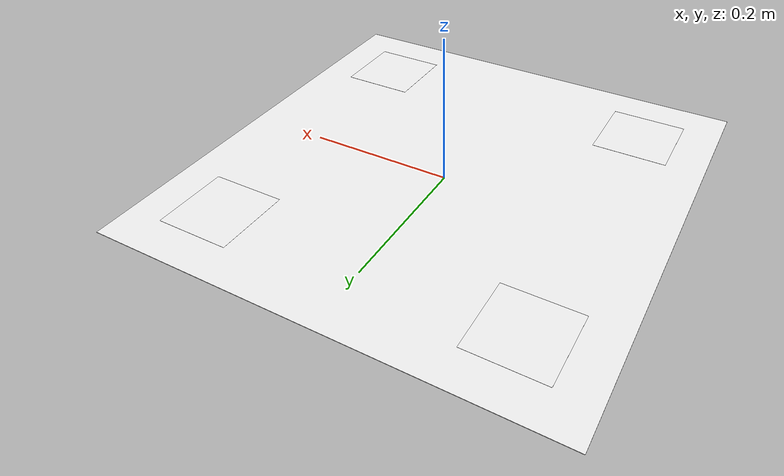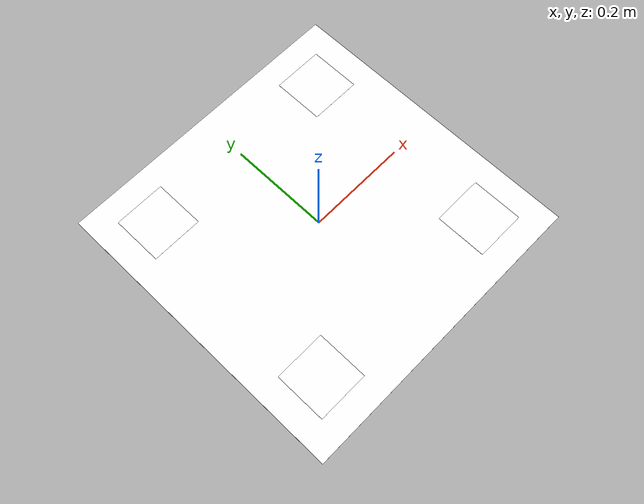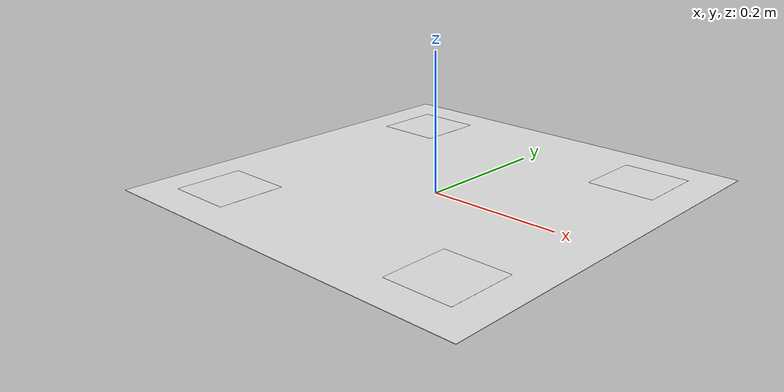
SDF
<sdf version="1.7">
 <world name="world_demo">
  <gravity>0 0 -9.8</gravity>
  <spherical_coordinates>
   <surface_model>EARTH_WGS84</surface_model>
   <world_frame_orientation>ENU</world_frame_orientation>
   <latitude_deg>25.020712</latitude_deg>
   <longitude_deg>121.464488</longitude_deg>
   <elevation>0</elevation>
   <heading_deg>0</heading_deg>
  </spherical_coordinates>
  <physics type="ode"><max_step_size>0.01</max_step_size><real_time_factor>1</real_time_factor></physics>
  <plugin name="ignition::gazebo::systems::Physics" filename="libignition-gazebo-physics-system.so"/>
  <plugin name="ignition::gazebo::systems::UserCommands" filename="libignition-gazebo-user-commands-system.so"/>
  <plugin name="ignition::gazebo::systems::SceneBroadcaster" filename="libignition-gazebo-scene-broadcaster-system.so"/>
  <plugin name="ignition::gazebo::systems::Imu" filename="ignition-gazebo-imu-system"/>
  <plugin name="ignition::gazebo::systems::Sensors" filename="ignition-gazebo-sensors-system">
   <render_engine>ogre2</render_engine>
  </plugin>
  <scene>
   <ambient>1 1 1 1</ambient>
   <background>0.3 0.7 0.9 1</background>
   <shadows>0</shadows>
   <grid>false</grid>
  </scene>
  <light type="directional" name="sun">
   <cast_shadows>0</cast_shadows>
   <pose>-5 -3 10 0 0 0</pose>
   <diffuse>1 1 1 1</diffuse>
   <specular>1 1 1 1</specular>
   <direction>0 0 -1</direction>
  </light>
  <model name="ground_plane">
   <static>true</static>
   <link name="link">
    <collision name="collision">
     <geometry><plane><normal>0.0 0.0 1</normal><size>1 1</size></plane></geometry>
    </collision>
   </link>
  </model>
  <include>
   <uri>file:///home/uni_co/ros2_ws/src/drone_in_warehouse/models/ArUcoMarkers/ArUcoMarker_0.sdf</uri>
   <name>ArUcoMarker_0</name>
   <pose>0.2 0.2 0.011 0 0 0</pose>
  </include>
  <include>
   <uri>file:///home/uni_co/ros2_ws/src/drone_in_warehouse/models/ArUcoMarkers/ArUcoMarker_1.sdf</uri>
   <name>ArUcoMarker_1</name>
   <pose>0.2 -0.2 0.011 0 0 0</pose>
  </include>
  <include>
   <uri>file:///home/uni_co/ros2_ws/src/drone_in_warehouse/models/ArUcoMarkers/ArUcoMarker_2.sdf</uri>
   <name>ArUcoMarker_2</name>
   <pose>-0.2 0.2 0.011 0 0 0</pose>
  </include>
  <include>
   <uri>file:///home/uni_co/ros2_ws/src/drone_in_warehouse/models/ArUcoMarkers/ArUcoMarker_3.sdf</uri>
   <name>ArUcoMarker_3</name>
   <pose>-0.2 -0.2 0.011 0 0 0</pose>
  </include>
  <include>
   <uri>file:///home/uni_co/ros2_ws/src/drone_in_warehouse/models/ArUcoMarkers/ArUcoMarker_base.sdf</uri>
   <name>ArUcoMarker_base</name>
   <pose>0 0 0.01 0 0 0</pose>
  </include>
 </world>
</sdf>

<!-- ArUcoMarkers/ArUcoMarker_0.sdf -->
<sdf version="1.7">
  <model name="ArUcoMarker_0">
    <static>true</static>
    <link name="link">
      <pose>0 0 0 0 0 0</pose>
      <visual name="marker_visual">
        <pose>0 0 0.001 0 0 -1.5708</pose> <!-- 微抬高避免 Z-fighting -->
        <geometry>
          <plane>
            <normal>0 0 1</normal>
            <size>0.1 0.1</size> <!-- 根據需求改大小 -->
          </plane>
        </geometry>
        <material>
          <pbr>
            <metal>
              <albedo_map>model://ArUcoMarkers/textures/Original_ArUco/aruco_0.png</albedo_map>
              <metalness>0.0</metalness>
              <roughness>1.0</roughness>
            </metal>
          </pbr>
          <ambient>1 1 1 1</ambient>
          <diffuse>1 1 1 1</diffuse>
        </material>
      </visual>
    </link>
  </model>
</sdf>

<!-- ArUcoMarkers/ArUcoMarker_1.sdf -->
<sdf version="1.7">
  <model name="ArUcoMarker_1">
    <static>true</static>
    <link name="link">
      <pose>0 0 0 0 0 0</pose>
      <visual name="marker_visual">
        <pose>0 0 0.001 0 0 -1.5708</pose> <!-- 微抬高避免 Z-fighting -->
        <geometry>
          <plane>
            <normal>0 0 1</normal>
            <size>0.1 0.1</size> <!-- 根據需求改大小 -->
          </plane>
        </geometry>
        <material>
          <pbr>
            <metal>
              <albedo_map>model://ArUcoMarkers/textures/Original_ArUco/aruco_1.png</albedo_map>
              <metalness>0.0</metalness>
              <roughness>1.0</roughness>
            </metal>
          </pbr>
          <ambient>1 1 1 1</ambient>
          <diffuse>1 1 1 1</diffuse>
        </material>
      </visual>
    </link>
  </model>
</sdf>

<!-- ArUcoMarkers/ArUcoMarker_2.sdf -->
<sdf version="1.7">
  <model name="ArUcoMarker_2">
    <static>true</static>
    <link name="link">
      <pose>0 0 0 0 0 0</pose>
      <visual name="marker_visual">
        <pose>0 0 0.001 0 0 -1.5708</pose> <!-- 微抬高避免 Z-fighting -->
        <geometry>
          <plane>
            <normal>0 0 1</normal>
            <size>0.1 0.1</size> <!-- 根據需求改大小 -->
          </plane>
        </geometry>
        <material>
          <pbr>
            <metal>
              <albedo_map>model://ArUcoMarkers/textures/Original_ArUco/aruco_2.png</albedo_map>
              <metalness>0.0</metalness>
              <roughness>1.0</roughness>
            </metal>
          </pbr>
          <ambient>1 1 1 1</ambient>
          <diffuse>1 1 1 1</diffuse>
        </material>
      </visual>
    </link>
  </model>
</sdf>

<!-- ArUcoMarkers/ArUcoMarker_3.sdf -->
<sdf version="1.7">
  <model name="ArUcoMarker_3">
    <static>true</static>
    <link name="link">
      <pose>0 0 0 0 0 0</pose>
      <visual name="marker_visual">
        <pose>0 0 0.001 0 0 -1.5708</pose> <!-- 微抬高避免 Z-fighting -->
        <geometry>
          <plane>
            <normal>0 0 1</normal>
            <size>0.1 0.1</size> <!-- 根據需求改大小 -->
          </plane>
        </geometry>
        <material>
          <pbr>
            <metal>
              <albedo_map>model://ArUcoMarkers/textures/Original_ArUco/aruco_3.png</albedo_map>
              <metalness>0.0</metalness>
              <roughness>1.0</roughness>
            </metal>
          </pbr>
          <ambient>1 1 1 1</ambient>
          <diffuse>1 1 1 1</diffuse>
        </material>
      </visual>
    </link>
  </model>
</sdf>

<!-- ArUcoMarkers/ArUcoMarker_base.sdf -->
<sdf version="1.7">
  <model name="ArUcoMarker_base">
    <static>true</static>
    <link name="link">
      <pose>0 0 0 0 0 0</pose>
      <visual name="marker_visual">
        <pose>0 0 0.001 0 0 -1.5708</pose> <!-- 微抬高避免 Z-fighting -->
        <geometry>
          <plane>
            <normal>0 0 1</normal>
            <size>0.6 0.6</size> <!-- 根據需求改大小 -->
          </plane>
        </geometry>
        <material>
          <pbr>
            <metal>
              <albedo_map>model://ArUcoMarkers/textures/ArUcoMarker_base.png</albedo_map>
              <metalness>0.0</metalness>
              <roughness>1.0</roughness>
            </metal>
          </pbr>
          <ambient>1 1 1 1</ambient>
          <diffuse>1 1 1 1</diffuse>
        </material>
      </visual>
    </link>
  </model>
</sdf>
